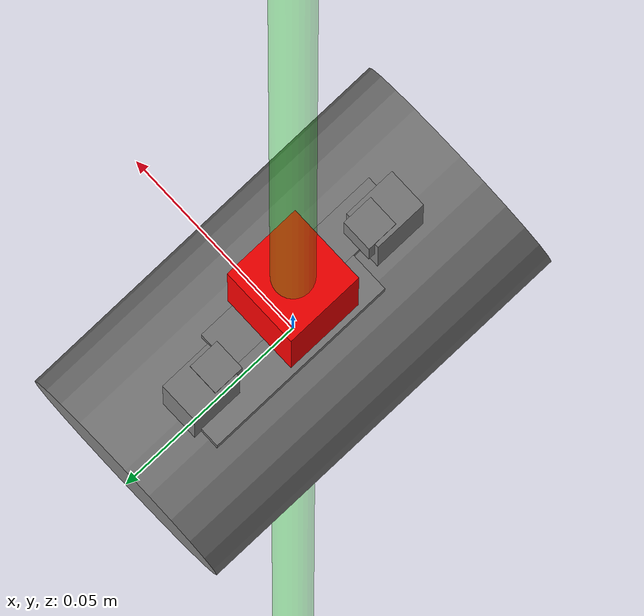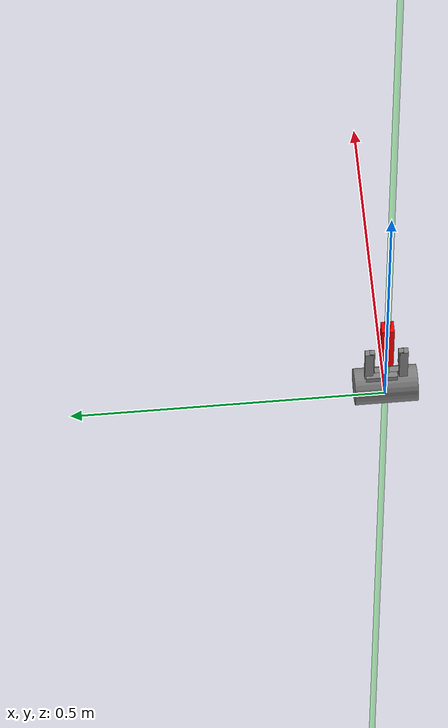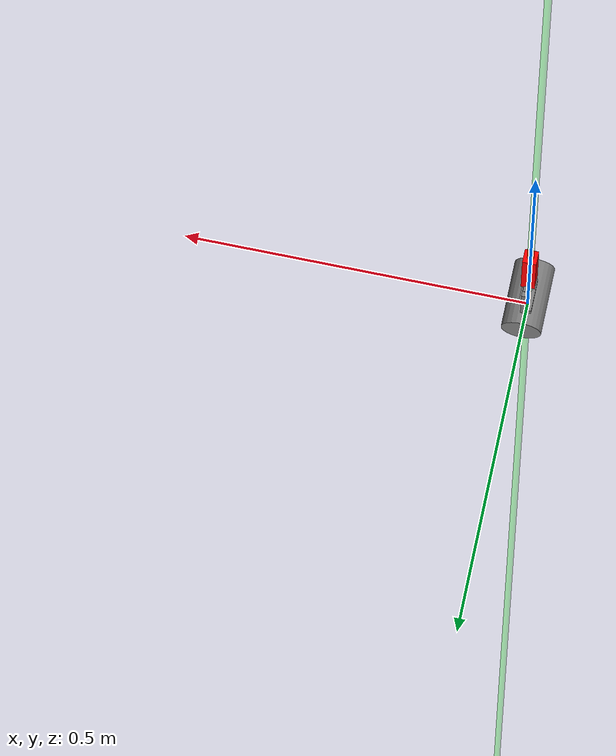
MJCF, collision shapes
<mujoco model="base">
    <asset>
        <mesh name="electric_gripper_base" file="meshes/two_finger_gripper/electric_gripper_base.STL" />
        <mesh name="standard_narrow" file="meshes/two_finger_gripper/standard_narrow.STL" />
        <mesh name="half_round_tip" file="meshes/two_finger_gripper/half_round_tip.STL" />
        <!-- NOTE: added these textures for the peg -->
        <texture type="cube" file="../textures/ceramic.png" name="peg_tex"/>
        <material name="peg_mat" specular="0.4" shininess="0.1" texrepeat="1 1" texture="peg_tex" texuniform="true"/>
    </asset>
    <actuator>
        <position ctrllimited="true" ctrlrange="-0.0115 0.020833" joint="r_gripper_r_finger_joint" kp="10000" name="gripper_r_gripper_r_finger_joint" forcelimited="true" forcerange="-20 20"/>
        <position ctrllimited="true" ctrlrange="-0.020833 0.0115" joint="r_gripper_l_finger_joint" kp="10000" name="gripper_r_gripper_l_finger_joint" forcelimited="true" forcerange="-20 20"/>
    </actuator>

    <worldbody>
        <geom size="1e-08 5e-09" type="cylinder" />
        <body name="right_gripper_base" pos="0 0 0.025">
            <inertial pos="0 0 0" quat="-0.5 0.5 0.5 0.5" mass="0.3" diaginertia="3e-08 2e-08 2e-08" />
            <geom quat="0 0 0.707107 0.707107" type="mesh" contype="0" conaffinity="0" group="1" mesh="electric_gripper_base" />
            <geom size="0.029 0.05" quat="0 0 0.707107 0.707107" type="cylinder" />
            <body name="right_gripper" pos="0 0 0.095">
                <inertial pos="0 0 0" mass="0.0001" diaginertia="0 0 0" />
                <!-- This site was added for visualization. -->
                <site name="grip_site" pos="0 0 0" size="0.01 0.01 0.01" rgba="1 0 0 1" type="sphere" group="1"></site>
                <!-- This site was added for visualization. -->
                <site name="grip_site_cylinder" pos="0 0 0" size="0.005 10" rgba="0 1 0 0.3" type="cylinder" group="1"></site>
                <!-- This camera points out of the gripper. -->
                <camera mode="fixed" name="eye_in_hand" pos="0 0 0" quat="0 -1 1 0" fovy="75"/>
            </body>
            <body name="r_gripper_l_finger" pos="0 0.01 0.02">
                <inertial pos="0 0 0" quat="0 0 0 -1" mass="0.02" diaginertia="0.01 0.01 0.01" />
                <joint name="r_gripper_l_finger_joint" pos="0 0 0" axis="0 1 0" type="slide" limited="true" range="-0.0115 0.020833" damping="100"/>
                <geom name="r_gripper_l_finger" quat="0 0 0 -1" type="mesh" contype="0" conaffinity="0" group="1" mesh="standard_narrow" />
                <geom size="0.005 0.00675 0.0375" pos="0 0.01725 0.04" quat="0 0 0 -1" type="box" conaffinity="1" contype="0" name="l_finger_g0" friction="0 0 0"/>
                <geom size="0.005 0.025 0.0085" pos="-0.005 -0.003 0.0083" quat="0 0 0 -1" type="box" conaffinity="1" contype="0" name="l_finger_g1" friction="0 0 0"/>

                <body name="r_gripper_l_finger_tip" pos="0 0.01725 0.075">
                    <inertial pos="0 0 0" quat="0 0 0 1" mass="0.01" diaginertia="0.01 0.01 0.01" />
                    <geom quat="0 0 0 1" type="mesh" contype="0" conaffinity="0" group="1" mesh="half_round_tip" />
                    <geom size="0.004 0.004 0.0185" pos="0 -0.0045 -0.015" quat="0 0 0 1" type="box"  conaffinity="1" contype="0" name="l_fingertip_g0" friction="0 0 0"/>
                </body>
            </body>
            <body name="r_gripper_r_finger" pos="0 -0.01 0.02">
                <inertial pos="0 0 0" mass="0.02" diaginertia="0.01 0.01 0.01" />
                <joint name="r_gripper_r_finger_joint" pos="0 0 0" axis="0 1 0" type="slide" limited="true" range="-0.020833 0.0115" damping="100"/>
                <geom name="r_gripper_r_finger" type="mesh" contype="0" conaffinity="0" group="1" mesh="standard_narrow" />
                <geom size="0.005 0.00675 0.0375" pos="0 -0.01725 0.04" type="box" conaffinity="1" contype="0" name="r_finger_g0" friction="0 0 0"/>
                <geom size="0.005 0.025 0.0085" pos="0.005 0.003 0.0083" type="box" conaffinity="1" contype="0" name="r_finger_g1" friction="0 0 0"/>
                <body name="r_gripper_r_finger_tip" pos="0 -0.01725 0.075">
                    <inertial pos="0 0 0" mass="0.01" diaginertia="0.01 0.01 0.01" />
                    <geom type="mesh" contype="0" conaffinity="0" group="1" mesh="half_round_tip" />
                    <geom size="0.004 0.004 0.0185" pos="0 0.0045 -0.015" type="box"  conaffinity="1" contype="0" name="r_fingertip_g0" friction="0 0 0"/>
                </body>
            </body>

            <!-- NOTE: adding a rod -->
            <body name="r_gripper_rod" pos="0 0 0.12">
                <geom pos="0 0 0" size="0.01 0.01 0.05" type="box" rgba="1 0 0 1" group="1" friction="0.3 0.005 0.0001" material="peg_mat"/>
            </body>
        </body>
    </worldbody>
</mujoco>
